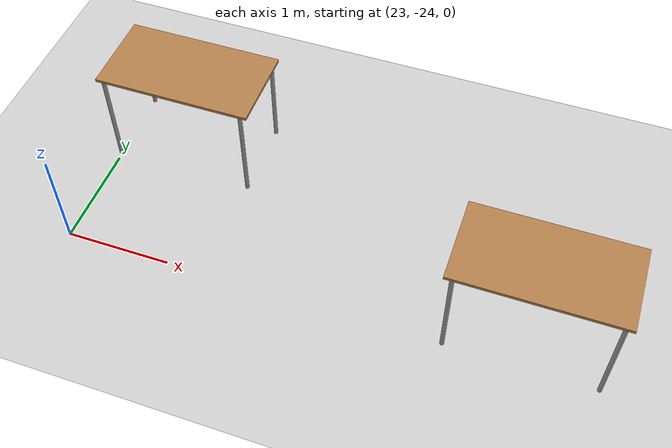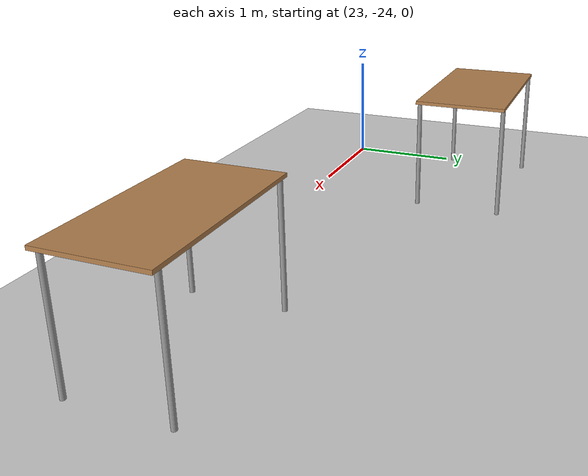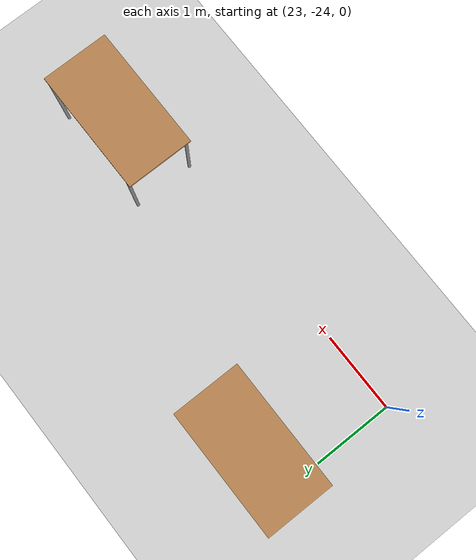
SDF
<sdf version="1.7">
 <world name="default">
  <model name="ground_plane">
   <static>1</static>
   <link name="link">
    <collision name="collision">
     <geometry><plane><normal>0 0 1</normal><size>100 100</size></plane></geometry>
     <surface><friction><ode><mu>100</mu><mu2>50</mu2></ode></friction></surface>
    </collision>
    <visual name="visual">
     <cast_shadows>0</cast_shadows>
     <geometry><plane><normal>0 0 1</normal><size>100 100</size></plane></geometry>
     <material>
      <script><uri>file://media/materials/scripts/gazebo.material</uri><name>Gazebo/Grey</name></script>
     </material>
    </visual>
   </link>
  </model>
  <model name="deletion_wall">
   <static>1</static>
   <link name="sensing_link">
    <gravity>0</gravity>
    <sensor name="object_disposal_contact" type="contact">
     <update_rate>10</update_rate>
     <contact><collision>collision</collision><topic>__default_topic__</topic></contact>
    </sensor>
    <collision name="collision"><geometry><box><size>0.1 1 1</size></box></geometry></collision>
    <visual name="visual">
     <geometry><box><size>0.1 1 1</size></box></geometry>
     <cast_shadows>0</cast_shadows>
     <transparency>100</transparency>
    </visual>
   </link>
   <plugin name="object_disposal_plugin" filename="libObjectDisposalPlugin.so">
    <contact_sensor_name>object_disposal_contact</contact_sensor_name>
    <contact_side_normal>1 0 0</contact_side_normal>
    <disposal_pose>30 30 0 0 0 0</disposal_pose>
    <update_rate>5</update_rate>
   </plugin>
   <pose>25.6008 -35.2087 0 0 -0 0</pose>
  </model>
  <model name="table_clone_2">
   <static>1</static>
   <link name="link">
    <collision name="surface">
     <pose>0 0 1 0 -0 0</pose>
     <geometry><box><size>1.5 0.8 0.03</size></box></geometry>
     <surface><friction><ode><mu>0.6</mu><mu2>0.6</mu2></ode></friction></surface>
    </collision>
    <visual name="visual1">
     <pose>0 0 1 0 -0 0</pose>
     <geometry><box><size>1.5 0.8 0.03</size></box></geometry>
     <material>
      <script><uri>file://media/materials/scripts/gazebo.material</uri><name>Gazebo/Wood</name></script>
     </material>
    </visual>
    <collision name="front_left_leg">
     <pose>0.68 0.38 0.5 0 -0 0</pose>
     <geometry><cylinder><radius>0.02</radius><length>1</length></cylinder></geometry>
    </collision>
    <visual name="front_left_leg">
     <pose>0.68 0.38 0.5 0 -0 0</pose>
     <geometry><cylinder><radius>0.02</radius><length>1</length></cylinder></geometry>
     <material>
      <script><uri>file://media/materials/scripts/gazebo.material</uri><name>Gazebo/Grey</name></script>
     </material>
    </visual>
    <collision name="front_right_leg">
     <pose>0.68 -0.38 0.5 0 -0 0</pose>
     <geometry><cylinder><radius>0.02</radius><length>1</length></cylinder></geometry>
    </collision>
    <visual name="front_right_leg">
     <pose>0.68 -0.38 0.5 0 -0 0</pose>
     <geometry><cylinder><radius>0.02</radius><length>1</length></cylinder></geometry>
     <material>
      <script><uri>file://media/materials/scripts/gazebo.material</uri><name>Gazebo/Grey</name></script>
     </material>
    </visual>
    <collision name="back_right_leg">
     <pose>-0.68 -0.38 0.5 0 -0 0</pose>
     <geometry><cylinder><radius>0.02</radius><length>1</length></cylinder></geometry>
    </collision>
    <visual name="back_right_leg">
     <pose>-0.68 -0.38 0.5 0 -0 0</pose>
     <geometry><cylinder><radius>0.02</radius><length>1</length></cylinder></geometry>
     <material>
      <script><uri>file://media/materials/scripts/gazebo.material</uri><name>Gazebo/Grey</name></script>
     </material>
    </visual>
    <collision name="back_left_leg">
     <pose>-0.68 0.38 0.5 0 -0 0</pose>
     <geometry><cylinder><radius>0.02</radius><length>1</length></cylinder></geometry>
    </collision>
    <visual name="back_left_leg">
     <pose>-0.68 0.38 0.5 0 -0 0</pose>
     <geometry><cylinder><radius>0.02</radius><length>1</length></cylinder></geometry>
     <material>
      <script><uri>file://media/materials/scripts/gazebo.material</uri><name>Gazebo/Grey</name></script>
     </material>
    </visual>
   </link>
   <pose>23.6698 -22.5483 0 0 -0 0</pose>
  </model>
  <model name="table_clone_3">
   <static>1</static>
   <link name="link">
    <collision name="surface">
     <pose>0 0 1 0 -0 0</pose>
     <geometry><box><size>1.5 0.8 0.03</size></box></geometry>
     <surface><friction><ode><mu>0.6</mu><mu2>0.6</mu2></ode></friction></surface>
    </collision>
    <visual name="visual1">
     <pose>0 0 1 0 -0 0</pose>
     <geometry><box><size>1.5 0.8 0.03</size></box></geometry>
     <material>
      <script><uri>file://media/materials/scripts/gazebo.material</uri><name>Gazebo/Wood</name></script>
     </material>
    </visual>
    <collision name="front_left_leg">
     <pose>0.68 0.38 0.5 0 -0 0</pose>
     <geometry><cylinder><radius>0.02</radius><length>1</length></cylinder></geometry>
    </collision>
    <visual name="front_left_leg">
     <pose>0.68 0.38 0.5 0 -0 0</pose>
     <geometry><cylinder><radius>0.02</radius><length>1</length></cylinder></geometry>
     <material>
      <script><uri>file://media/materials/scripts/gazebo.material</uri><name>Gazebo/Grey</name></script>
     </material>
    </visual>
    <collision name="front_right_leg">
     <pose>0.68 -0.38 0.5 0 -0 0</pose>
     <geometry><cylinder><radius>0.02</radius><length>1</length></cylinder></geometry>
    </collision>
    <visual name="front_right_leg">
     <pose>0.68 -0.38 0.5 0 -0 0</pose>
     <geometry><cylinder><radius>0.02</radius><length>1</length></cylinder></geometry>
     <material>
      <script><uri>file://media/materials/scripts/gazebo.material</uri><name>Gazebo/Grey</name></script>
     </material>
    </visual>
    <collision name="back_right_leg">
     <pose>-0.68 -0.38 0.5 0 -0 0</pose>
     <geometry><cylinder><radius>0.02</radius><length>1</length></cylinder></geometry>
    </collision>
    <visual name="back_right_leg">
     <pose>-0.68 -0.38 0.5 0 -0 0</pose>
     <geometry><cylinder><radius>0.02</radius><length>1</length></cylinder></geometry>
     <material>
      <script><uri>file://media/materials/scripts/gazebo.material</uri><name>Gazebo/Grey</name></script>
     </material>
    </visual>
    <collision name="back_left_leg">
     <pose>-0.68 0.38 0.5 0 -0 0</pose>
     <geometry><cylinder><radius>0.02</radius><length>1</length></cylinder></geometry>
    </collision>
    <visual name="back_left_leg">
     <pose>-0.68 0.38 0.5 0 -0 0</pose>
     <geometry><cylinder><radius>0.02</radius><length>1</length></cylinder></geometry>
     <material>
      <script><uri>file://media/materials/scripts/gazebo.material</uri><name>Gazebo/Grey</name></script>
     </material>
    </visual>
   </link>
   <pose>27.2754 -23.6023 0 0 -0 0</pose>
  </model>
 </world>
</sdf>
